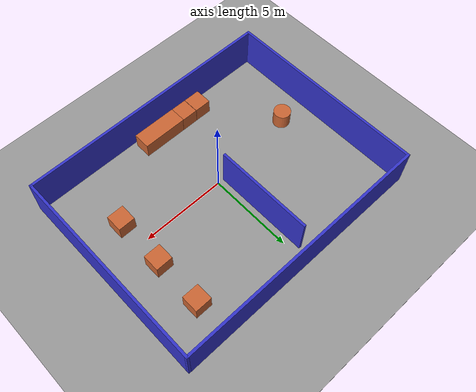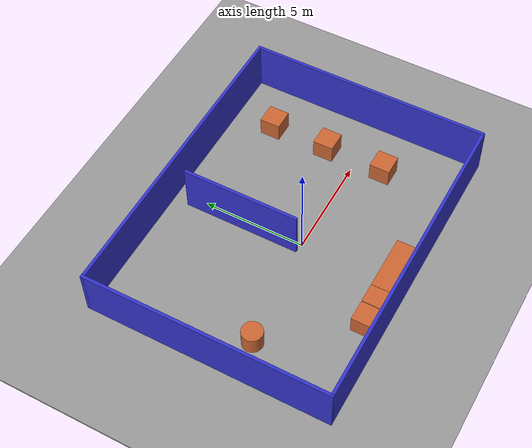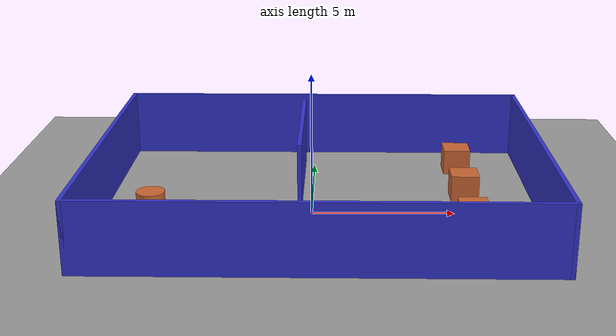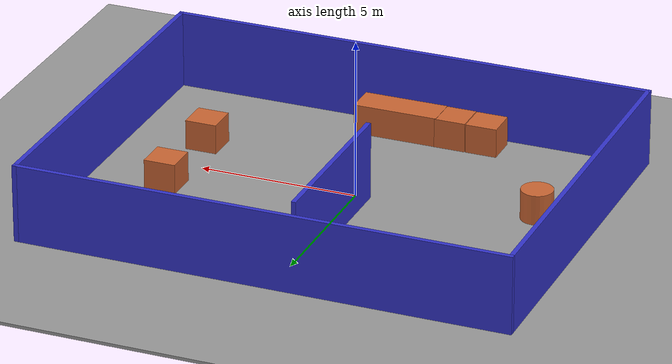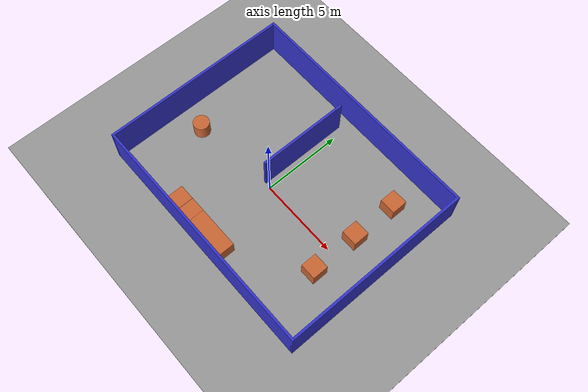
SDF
<sdf version="1.9">
 <world name="default">
  <gravity>0 0 -9.8</gravity>
  <magnetic_field>6e-06 2.3e-05 -4.2e-05</magnetic_field>
  <atmosphere type="adiabatic"/>
  <physics type="ode">
   <max_step_size>0.001</max_step_size>
   <real_time_factor>1</real_time_factor>
   <real_time_update_rate>1000</real_time_update_rate>
  </physics>
  <scene><ambient>0.4 0.4 0.4 1</ambient><background>0.7 0.7 0.7 1</background><shadows>true</shadows></scene>
  <audio><device>default</device></audio>
  <spherical_coordinates>
   <surface_model>EARTH_WGS84</surface_model>
   <latitude_deg>0</latitude_deg>
   <longitude_deg>0</longitude_deg>
   <elevation>0</elevation>
   <heading_deg>0</heading_deg>
  </spherical_coordinates>
  <model name="ground_plane">
   <static>true</static>
   <link name="link">
    <collision name="collision">
     <geometry><plane><normal>0 0 1</normal><size>100 100</size></plane></geometry>
     <surface><friction><ode><mu>100</mu><mu2>50</mu2></ode></friction></surface>
    </collision>
    <visual name="visual">
     <cast_shadows>false</cast_shadows>
     <geometry><plane><normal>0 0 1</normal><size>100 100</size></plane></geometry>
     <material>
      <ambient>0.6 0.6 0.6 1</ambient>
      <diffuse>0.6 0.6 0.6 1</diffuse>
      <specular>0.1 0.1 0.1 1</specular>
     </material>
    </visual>
    <inertial>
     <mass>1</mass>
     <inertia><ixx>1</ixx><ixy>0</ixy><ixz>0</ixz><iyy>1</iyy><iyz>0</iyz><izz>1</izz></inertia>
    </inertial>
   </link>
  </model>
  <model name="kitchen">
   <pose>0.318651 0.673836 0 0 -0 0</pose>
   <link name="Wall_10">
    <collision name="Wall_10_Collision">
     <geometry><box><size>12 0.15 2.5</size></box></geometry>
     <pose>0 0 1.25 0 -0 0</pose>
    </collision>
    <visual name="Wall_10_Visual">
     <pose>0 0 1.25 0 -0 0</pose>
     <geometry><box><size>12 0.15 2.5</size></box></geometry>
     <material>
      <ambient>0.2 0.2 0.8 1</ambient>
      <diffuse>0.2 0.2 0.8 1</diffuse>
      <specular>0.0 0.0 0.0 1</specular>
     </material>
     <meta><layer>0</layer></meta>
    </visual>
    <pose>-7.675 0 0 0 0 -1.5708</pose>
    <inertial>
     <mass>1</mass>
     <inertia><ixx>1</ixx><ixy>0</ixy><ixz>0</ixz><iyy>1</iyy><iyz>0</iyz><izz>1</izz></inertia>
    </inertial>
   </link>
   <link name="Wall_13">
    <collision name="Wall_13_Collision">
     <geometry><box><size>5.75 0.15 2.5</size></box></geometry>
     <pose>0 0 1.25 0 -0 0</pose>
    </collision>
    <visual name="Wall_13_Visual">
     <pose>0 0 1.25 0 -0 0</pose>
     <geometry><box><size>5.75 0.15 2.5</size></box></geometry>
     <material>
      <ambient>0.2 0.2 0.8 1</ambient>
      <diffuse>0.2 0.2 0.8 1</diffuse>
      <specular>0.0 0.0 0.0 1</specular>
     </material>
     <meta><layer>0</layer></meta>
    </visual>
    <pose>-0.74205 2.22603 0 0 0 -1.5708</pose>
    <inertial>
     <mass>1</mass>
     <inertia><ixx>1</ixx><ixy>0</ixy><ixz>0</ixz><iyy>1</iyy><iyz>0</iyz><izz>1</izz></inertia>
    </inertial>
   </link>
   <link name="Wall_7">
    <collision name="Wall_7_Collision">
     <geometry><box><size>15.5 0.15 2.5</size></box></geometry>
     <pose>0 0 1.25 0 -0 0</pose>
    </collision>
    <visual name="Wall_7_Visual">
     <pose>0 0 1.25 0 -0 0</pose>
     <geometry><box><size>15.5 0.15 2.5</size></box></geometry>
     <material>
      <ambient>0.2 0.2 0.8 1</ambient>
      <diffuse>0.2 0.2 0.8 1</diffuse>
      <specular>0.0 0.0 0.0 1</specular>
     </material>
     <meta><layer>0</layer></meta>
    </visual>
    <pose>0 -5.925 0 0 -0 0</pose>
    <inertial>
     <mass>1</mass>
     <inertia><ixx>1</ixx><ixy>0</ixy><ixz>0</ixz><iyy>1</iyy><iyz>0</iyz><izz>1</izz></inertia>
    </inertial>
   </link>
   <link name="Wall_8">
    <collision name="Wall_8_Collision">
     <geometry><box><size>12 0.15 2.5</size></box></geometry>
     <pose>0 0 1.25 0 -0 0</pose>
    </collision>
    <visual name="Wall_8_Visual">
     <pose>0 0 1.25 0 -0 0</pose>
     <geometry><box><size>12 0.15 2.5</size></box></geometry>
     <material>
      <ambient>0.2 0.2 0.8 1</ambient>
      <diffuse>0.2 0.2 0.8 1</diffuse>
      <specular>0.0 0.0 0.0 1</specular>
     </material>
     <meta><layer>0</layer></meta>
    </visual>
    <pose>7.675 0 0 0 -0 1.5708</pose>
    <inertial>
     <mass>1</mass>
     <inertia><ixx>1</ixx><ixy>0</ixy><ixz>0</ixz><iyy>1</iyy><iyz>0</iyz><izz>1</izz></inertia>
    </inertial>
   </link>
   <link name="Wall_9">
    <collision name="Wall_9_Collision">
     <geometry><box><size>15.5 0.15 2.5</size></box></geometry>
     <pose>0 0 1.25 0 -0 0</pose>
    </collision>
    <visual name="Wall_9_Visual">
     <pose>0 0 1.25 0 -0 0</pose>
     <geometry><box><size>15.5 0.15 2.5</size></box></geometry>
     <material>
      <ambient>0.2 0.2 0.8 1</ambient>
      <diffuse>0.2 0.2 0.8 1</diffuse>
      <specular>0.0 0.0 0.0 1</specular>
     </material>
     <meta><layer>0</layer></meta>
    </visual>
    <pose>0 5.925 0 0 -0 3.14159</pose>
    <inertial>
     <mass>1</mass>
     <inertia><ixx>1</ixx><ixy>0</ixy><ixz>0</ixz><iyy>1</iyy><iyz>0</iyz><izz>1</izz></inertia>
    </inertial>
   </link>
   <static>true</static>
  </model>
  <model name="unit_cylinder">
   <pose>-5.54609 -0.564127 0.499992 -3e-06 3e-06 0</pose>
   <link name="link">
    <inertial>
     <mass>1</mass>
     <inertia>
      <ixx>0.14583299999999999</ixx>
      <ixy>0</ixy>
      <ixz>0</ixz>
      <iyy>0.14583299999999999</iyy>
      <iyz>0</iyz>
      <izz>0.125</izz>
     </inertia>
    </inertial>
    <collision name="collision">
     <geometry><cylinder><radius>0.5</radius><length>1</length></cylinder></geometry>
    </collision>
    <visual name="visual">
     <geometry><cylinder><radius>0.5</radius><length>1</length></cylinder></geometry>
     <material>
      <ambient>0.8 0.4 0.2 1</ambient>
      <diffuse>0.8 0.4 0.2 1</diffuse>
      <specular>0.0 0.0 0.0 1</specular>
     </material>
    </visual>
   </link>
   <static>false</static>
  </model>
  <model name="unit_box">
   <pose>5.513 4.43333 0.499995 0 1e-05 0</pose>
   <link name="link">
    <inertial>
     <mass>1</mass>
     <inertia>
      <ixx>0.16666700000000001</ixx>
      <ixy>0</ixy>
      <ixz>0</ixz>
      <iyy>0.16666700000000001</iyy>
      <iyz>0</iyz>
      <izz>0.16666700000000001</izz>
     </inertia>
    </inertial>
    <collision name="collision"><geometry><box><size>1 1 1</size></box></geometry></collision>
    <visual name="visual">
     <geometry><box><size>1 1 1</size></box></geometry>
     <material>
      <ambient>0.8 0.4 0.2 1</ambient>
      <diffuse>0.8 0.4 0.2 1</diffuse>
      <specular>0.0 0.0 0.0 1</specular>
     </material>
    </visual>
   </link>
   <static>false</static>
  </model>
  <model name="unit_box_0">
   <pose>5.49841 1.53008 0.499995 -1e-05 -0 -0</pose>
   <link name="link">
    <inertial>
     <mass>1</mass>
     <inertia>
      <ixx>0.16666700000000001</ixx>
      <ixy>0</ixy>
      <ixz>0</ixz>
      <iyy>0.16666700000000001</iyy>
      <iyz>0</iyz>
      <izz>0.16666700000000001</izz>
     </inertia>
    </inertial>
    <collision name="collision"><geometry><box><size>1 1 1</size></box></geometry></collision>
    <visual name="visual">
     <geometry><box><size>1 1 1</size></box></geometry>
     <material>
      <ambient>0.8 0.4 0.2 1</ambient>
      <diffuse>0.8 0.4 0.2 1</diffuse>
      <specular>0.0 0.0 0.0 1</specular>
     </material>
    </visual>
   </link>
   <static>false</static>
  </model>
  <model name="unit_box_1">
   <pose>5.47691 -1.46819 0.499995 0 1e-05 0</pose>
   <link name="link">
    <inertial>
     <mass>1</mass>
     <inertia>
      <ixx>0.16666700000000001</ixx>
      <ixy>0</ixy>
      <ixz>0</ixz>
      <iyy>0.16666700000000001</iyy>
      <iyz>0</iyz>
      <izz>0.16666700000000001</izz>
     </inertia>
    </inertial>
    <collision name="collision"><geometry><box><size>1 1 1</size></box></geometry></collision>
    <visual name="visual">
     <geometry><box><size>1 1 1</size></box></geometry>
     <material>
      <ambient>0.8 0.4 0.2 1</ambient>
      <diffuse>0.8 0.4 0.2 1</diffuse>
      <specular>0.0 0.0 0.0 1</specular>
     </material>
    </visual>
   </link>
   <static>false</static>
  </model>
  <model name="unit_box_2">
   <pose>0.314918 -4.4606 0.499995 -6e-06 2e-06 -3.6e-05</pose>
   <link name="link">
    <inertial>
     <mass>1</mass>
     <inertia>
      <ixx>0.16666700000000001</ixx>
      <ixy>0</ixy>
      <ixz>0</ixz>
      <iyy>0.16666700000000001</iyy>
      <iyz>0</iyz>
      <izz>0.16666700000000001</izz>
     </inertia>
    </inertial>
    <collision name="collision"><geometry><box><size>2.67996 1 1</size></box></geometry></collision>
    <visual name="visual">
     <geometry><box><size>2.67996 1 1</size></box></geometry>
     <material>
      <ambient>0.8 0.4 0.2 1</ambient>
      <diffuse>0.8 0.4 0.2 1</diffuse>
      <specular>0.0 0.0 0.0 1</specular>
     </material>
    </visual>
   </link>
   <static>false</static>
  </model>
  <model name="box">
   <pose>-1.47238 -4.45549 0.489089 0 -0 0</pose>
   <link name="box_link">
    <inertial>
     <inertia><ixx>0.16666</ixx><ixy>0</ixy><ixz>0</ixz><iyy>0.16666</iyy><iyz>0</iyz><izz>0.16666</izz></inertia>
     <mass>1</mass>
    </inertial>
    <collision name="box_collision"><geometry><box><size>1 1 1</size></box></geometry></collision>
    <visual name="box_visual">
     <geometry><box><size>1 1 1</size></box></geometry>
     <material>
      <ambient>0.8 0.4 0.2 1</ambient>
      <diffuse>0.8 0.4 0.2 1</diffuse>
      <specular>0.0 0.0 0.0 1</specular>
     </material>
    </visual>
   </link>
   <static>false</static>
  </model>
  <model name="ground_plane_1">
   <static>true</static>
   <link name="link">
    <collision name="collision">
     <geometry><plane><normal>0 0 1</normal><size>100 100</size></plane></geometry>
     <surface><friction><ode><mu>100</mu><mu2>50</mu2></ode></friction></surface>
    </collision>
    <visual name="visual">
     <cast_shadows>false</cast_shadows>
     <geometry><plane><normal>0 0 1</normal><size>100 100</size></plane></geometry>
     <material>
      <ambient>0.6 0.6 0.6 1</ambient>
      <diffuse>0.6 0.6 0.6 1</diffuse>
      <specular>0.1 0.1 0.1 1</specular>
     </material>
    </visual>
    <inertial>
     <mass>1</mass>
     <inertia><ixx>1</ixx><ixy>0</ixy><ixz>0</ixz><iyy>1</iyy><iyz>0</iyz><izz>1</izz></inertia>
    </inertial>
   </link>
   <pose>-2.03655 -4.97939 0 0 -0 0</pose>
  </model>
  <model name="box_1">
   <pose>-2.49184 -4.45835 0.47901 0 -0 0</pose>
   <link name="box_link">
    <inertial>
     <inertia><ixx>0.16666</ixx><ixy>0</ixy><ixz>0</ixz><iyy>0.16666</iyy><iyz>0</iyz><izz>0.16666</izz></inertia>
     <mass>1</mass>
    </inertial>
    <collision name="box_collision"><geometry><box><size>1 1 1</size></box></geometry></collision>
    <visual name="box_visual">
     <geometry><box><size>1 1 1</size></box></geometry>
     <material>
      <ambient>0.8 0.4 0.2 1</ambient>
      <diffuse>0.8 0.4 0.2 1</diffuse>
      <specular>0.0 0.0 0.0 1</specular>
     </material>
    </visual>
   </link>
   <static>false</static>
  </model>
  <light name="sun" type="directional">
   <pose>0 0 10 0 -0 0</pose>
   <intensity>1</intensity>
   <direction>-0.5 0.1 -0.9</direction>
   <diffuse>0.8 0.8 0.8 1</diffuse>
   <specular>0.2 0.2 0.2 1</specular>
   <attenuation>
    <range>1000</range>
    <linear>0.01</linear>
    <constant>0.90000000000000002</constant>
    <quadratic>0.001</quadratic>
   </attenuation>
   <spot><inner_angle>0</inner_angle><outer_angle>0</outer_angle><falloff>0</falloff></spot>
  </light>
 </world>
</sdf>
